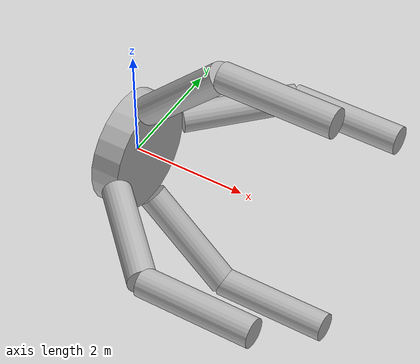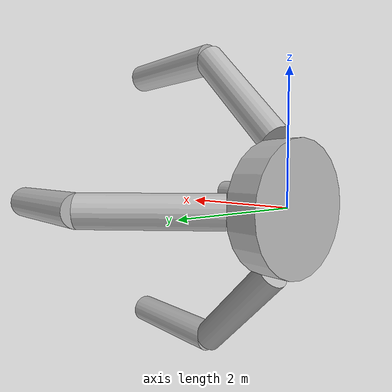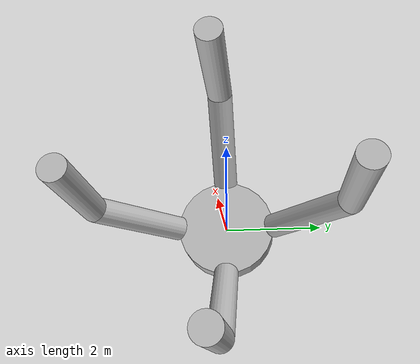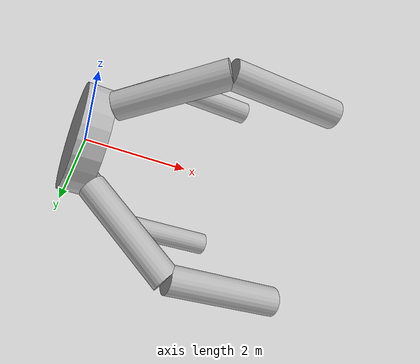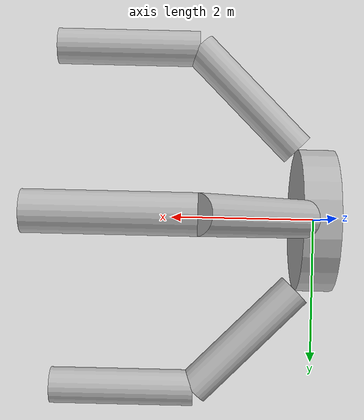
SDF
<?xml version="1.0"?>
<sdf version="1.4">
    <model name="gripper1">

        <link name='palm'>
            <pose>0.0 0.0 0 0 1.57 0</pose>
            <inertial>
                <inertia>
                    <ixx>0.01</ixx>
                    <ixy>0</ixy>
                    <ixz>0</ixz>
                    <iyy>0.01</iyy>
                    <iyz>0</iyz>
                    <izz>0.01</izz>
                </inertia>
                <mass>0.5</mass>
            </inertial>
            <collision name="coll1ision">
                <geometry>
                    <cylinder>
                        <length>0.5</length>
												<radius>1</radius>
                    </cylinder>
                </geometry>
            </collision>
            <visual name="visu1al">
                <geometry>
                    <cylinder>
                        <length>0.5</length>
												<radius>1</radius>
                    </cylinder>
                </geometry>
            </visual>
        </link>

       <link name="up_finger">
            <pose>0.95 0 1.7 0 0.785 0</pose>
            <inertial>
                <inertia>
                    <ixx>0.01</ixx>
                    <ixy>0</ixy>
                    <ixz>0</ixz>
                    <iyy>0.01</iyy>
                    <iyz>0</iyz>
                    <izz>0.01</izz>
                </inertia>
                <mass>0.1</mass>
            </inertial>
            <collision name="collision">
                <geometry>
                    <cylinder>
                        <length>2</length>
												<radius>0.25</radius>
                    </cylinder>
                </geometry>
            </collision>
            <visual name="visual">
                <geometry>
                    <cylinder>
                        <length>2</length>
												<radius>0.25</radius>
                    </cylinder>
                </geometry>
                <material>
                    <script>Gazebo/Green</script>
                </material>
            </visual>
        </link>
        <link name="up_finger_tip">
            <pose>2.65 0 2.4  0 1.5707 0</pose>
            <inertial>
                <inertia>
                    <ixx>0.01</ixx>
                    <ixy>0</ixy>
                    <ixz>0</ixz>
                    <iyy>0.01</iyy>
                    <iyz>0</iyz>
                    <izz>0.01</izz>
                </inertia>
                <mass>0.1</mass>
            </inertial>
            <collision name="collision">
                <geometry>
                    <cylinder>
                        <length>2</length>
												<radius>0.25</radius>
                    </cylinder>
                </geometry>
            </collision>
            <visual name="visual">
                <geometry>
                    <cylinder>
                        <length>2</length>
												<radius>0.25</radius>
                    </cylinder>
                </geometry>

                <material>
                    <script>Gazebo/Green</script>
                </material>
            </visual>
        </link>

       <link name="down_finger">
            <pose>0.95 0 -1.7 0 -0.785 0</pose>
            <inertial>
                <inertia>
                    <ixx>0.01</ixx>
                    <ixy>0</ixy>
                    <ixz>0</ixz>
                    <iyy>0.01</iyy>
                    <iyz>0</iyz>
                    <izz>0.01</izz>
                </inertia>
                <mass>0.1</mass>
            </inertial>
            <collision name="collision">
                <geometry>
                    <cylinder>
                        <length>2</length>
												<radius>0.25</radius>
                    </cylinder>
                </geometry>
            </collision>
            <visual name="visual">
                <geometry>
                    <cylinder>
                        <length>2</length>
												<radius>0.25</radius>
                    </cylinder>
                </geometry>
                <material>
                    <script>Gazebo/Green</script>
                </material>
            </visual>
        </link>
        <link name="down_finger_tip">
            <pose>2.65 0 -2.4  0 1.5707 0</pose>
            <inertial>
                <inertia>
                    <ixx>0.01</ixx>
                    <ixy>0</ixy>
                    <ixz>0</ixz>
                    <iyy>0.01</iyy>
                    <iyz>0</iyz>
                    <izz>0.01</izz>
                </inertia>
                <mass>0.1</mass>
            </inertial>
            <collision name="collision">
                <geometry>
                    <cylinder>
                        <length>2</length>
												<radius>0.25</radius>
                    </cylinder>
                </geometry>
            </collision>
            <visual name="visual">
                <geometry>
                    <cylinder>
                        <length>2</length>
												<radius>0.25</radius>
                    </cylinder>
                </geometry>

                <material>
                    <script>Gazebo/Green</script>
                </material>
            </visual>
        </link>

       <link name="left_finger">
            <pose>0.95  -1.7 0 0 1.57 -0.785 </pose>
            <inertial>
                <inertia>
                    <ixx>0.01</ixx>
                    <ixy>0</ixy>
                    <ixz>0</ixz>
                    <iyy>0.01</iyy>
                    <iyz>0</iyz>
                    <izz>0.01</izz>
                </inertia>
                <mass>0.1</mass>
            </inertial>
            <collision name="collision">
                <geometry>
                    <cylinder>
                        <length>2</length>
												<radius>0.25</radius>
                    </cylinder>
                </geometry>
            </collision>
            <visual name="visual">
                <geometry>
                    <cylinder>
                        <length>2</length>
												<radius>0.25</radius>
                    </cylinder>
                </geometry>
                <material>
                    <script>Gazebo/Green</script>
                </material>
            </visual>
        </link>
        <link name="left_finger_tip">
            <pose>2.65 -2.4  0 0  1.5707 0 </pose>
            <inertial>
                <inertia>
                    <ixx>0.01</ixx>
                    <ixy>0</ixy>
                    <ixz>0</ixz>
                    <iyy>0.01</iyy>
                    <iyz>0</iyz>
                    <izz>0.01</izz>
                </inertia>
                <mass>0.1</mass>
            </inertial>
            <collision name="collision">
                <geometry>
                    <cylinder>
                        <length>2</length>
												<radius>0.25</radius>
                    </cylinder>
                </geometry>
            </collision>
            <visual name="visual">
                <geometry>
                    <cylinder>
                        <length>2</length>
												<radius>0.25</radius>
                    </cylinder>
                </geometry>

                <material>
                    <script>Gazebo/Green</script>
                </material>
            </visual>
        </link>

       <link name="right_finger">
            <pose>0.95  1.7 0 0 1.57 0.785 </pose>
            <inertial>
                <inertia>
                    <ixx>0.01</ixx>
                    <ixy>0</ixy>
                    <ixz>0</ixz>
                    <iyy>0.01</iyy>
                    <iyz>0</iyz>
                    <izz>0.01</izz>
                </inertia>
                <mass>0.1</mass>
            </inertial>
            <collision name="collision">
                <geometry>
                    <cylinder>
                        <length>2</length>
												<radius>0.25</radius>
                    </cylinder>
                </geometry>
            </collision>
            <visual name="visual">
                <geometry>
                    <cylinder>
                        <length>2</length>
												<radius>0.25</radius>
                    </cylinder>
                </geometry>
                <material>
                    <script>Gazebo/Green</script>
                </material>
            </visual>
        </link>
        <link name="right_finger_tip">
            <pose>2.65 2.4  0 0  1.5707 0 </pose>
            <inertial>
                <inertia>
                    <ixx>0.01</ixx>
                    <ixy>0</ixy>
                    <ixz>0</ixz>
                    <iyy>0.01</iyy>
                    <iyz>0</iyz>
                    <izz>0.01</izz>
                </inertia>
                <mass>0.1</mass>
            </inertial>
            <collision name="collision">
                <geometry>
                    <cylinder>
                        <length>2</length>
												<radius>0.25</radius>
                    </cylinder>
                </geometry>
            </collision>
            <visual name="visual">
                <geometry>
                    <cylinder>
                        <length>2</length>
												<radius>0.25</radius>
                    </cylinder>
                </geometry>

                <material>
                    <script>Gazebo/Green</script>
                </material>
            </visual>
        </link>

		<joint name="palm_up_finger" type="revolute">
            <pose>0  0 -1 0 0 0</pose>
            <child>up_finger</child>
            <parent>palm</parent>
            <axis>

                <xyz>0 0 1</xyz>
            </axis>
        </joint>
        <joint name="up_finger_tip" type="revolute">
            <pose>0 0 -1 0 0 0</pose>
            <child>up_finger_tip</child>
            <parent>up_finger</parent>
            <axis>

                <xyz>0 1 0 </xyz>
            </axis>
        </joint>

		<joint name="palm_down_finger" type="revolute">
            <pose>0  0 1 0 0 0</pose>
            <child>down_finger</child>
            <parent>palm</parent>
            <axis>

                <xyz>0 0 1</xyz>
            </axis>
        </joint>
        <joint name="down_finger_tip" type="revolute">
            <pose>0 0 -1 0 0 0</pose>
            <child>down_finger_tip</child>
            <parent>down_finger</parent>
            <axis>

                <xyz>0 1 0 </xyz>
            </axis>
        </joint>

		<joint name="palm_right_finger" type="revolute">
            <pose>0  0 -1 0 0 0</pose>
            <child>right_finger</child>
            <parent>palm</parent>
            <axis>

                <xyz>0 1 0</xyz>
            </axis>
        </joint>
        <joint name="right_finger_tip" type="revolute">
            <pose>0 0 -1 0 0 0</pose>
            <child>right_finger_tip</child>
            <parent>right_finger</parent>
            <axis>

                <xyz>0 0 1 </xyz>
            </axis>
        </joint>

		<joint name="palm_left_finger" type="revolute">
            <pose>0  0 -1 0 0 0</pose>
            <child>left_finger</child>
            <parent>palm</parent>
            <axis>

                <xyz>0 1 0</xyz>
            </axis>
        </joint>
        <joint name="left_finger_tip" type="revolute">
            <pose>0 0 -1 0 0 0</pose>
            <child>left_finger_tip</child>
            <parent>left_finger</parent>
            <axis>

                <xyz>0  0 1  </xyz>
            </axis>
        </joint>

    </model>
</sdf>
